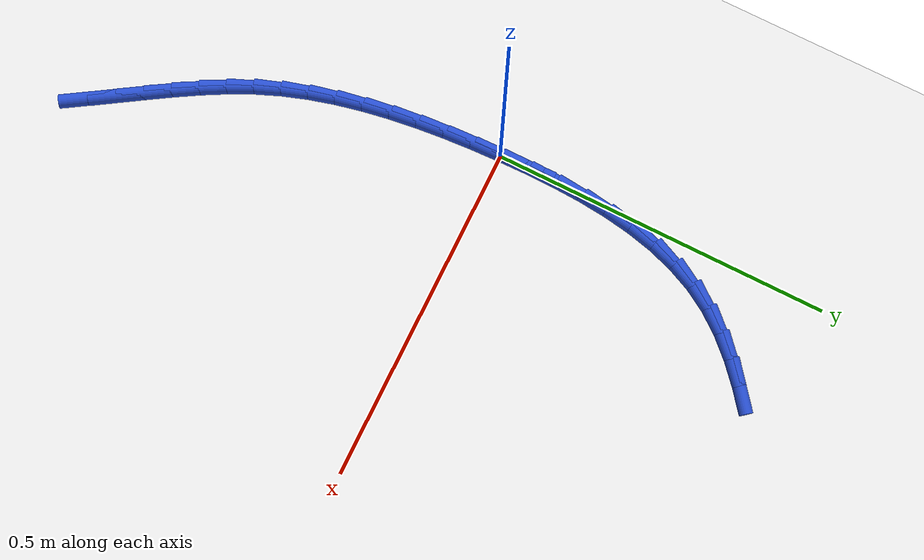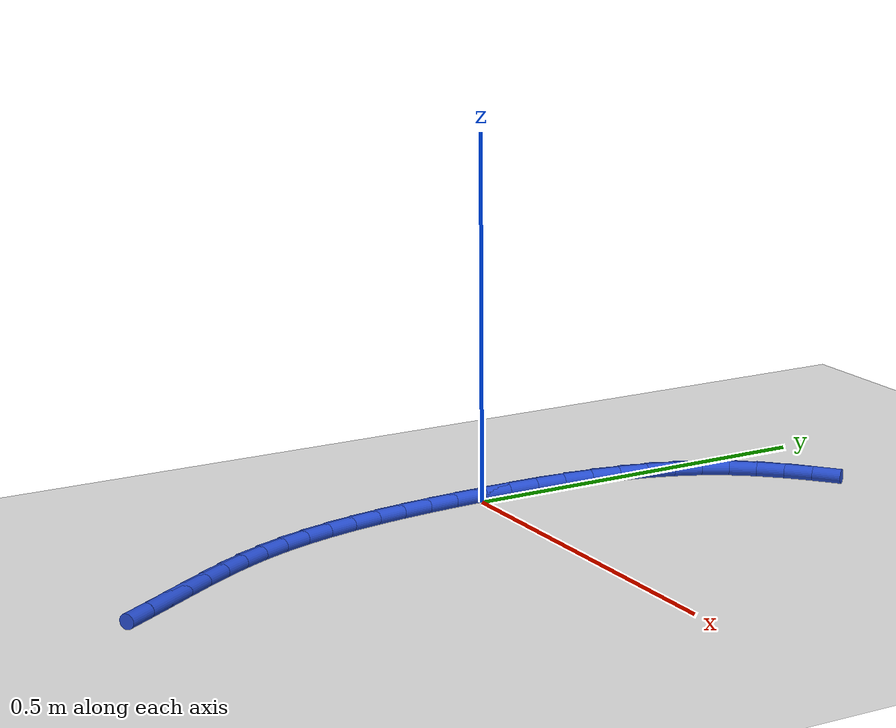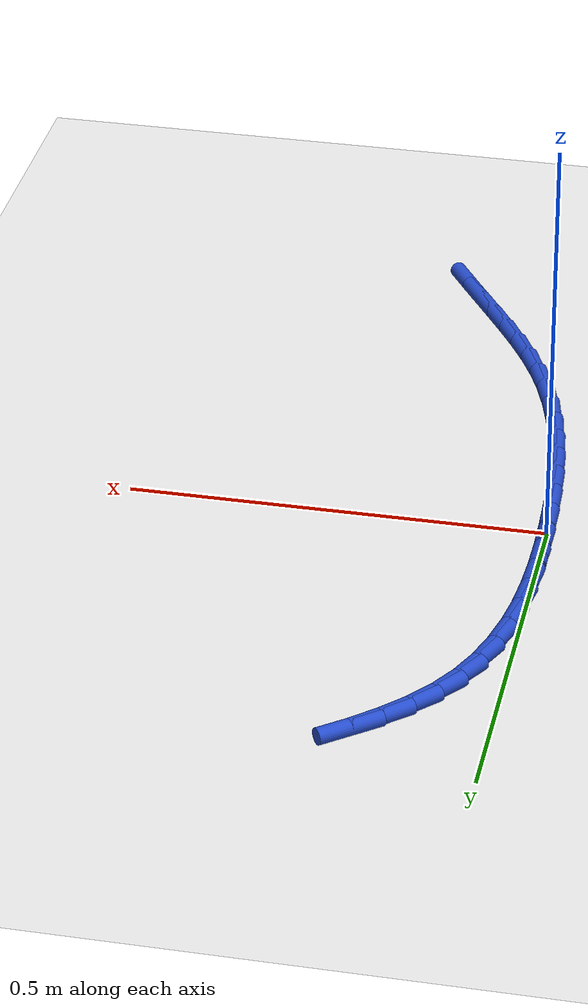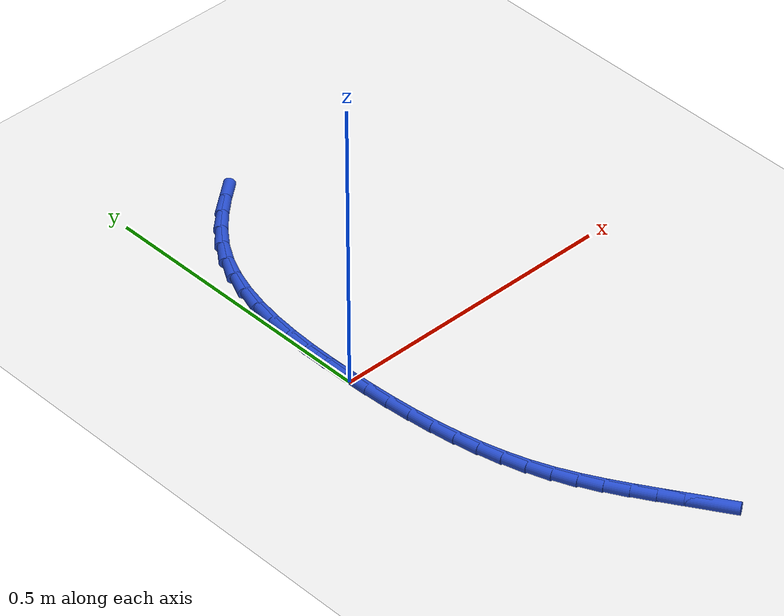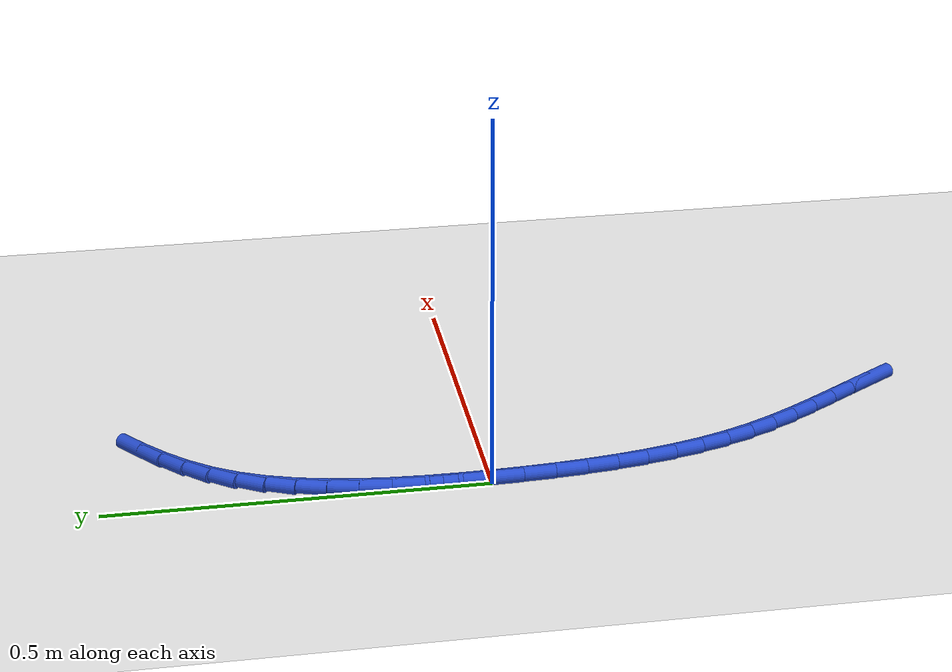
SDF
<sdf version="1.6">
 <world name="default">
  <model name="ground_plane">
   <static>1</static>
   <link name="link">
    <collision name="collision">
     <geometry><plane><normal>0 0 1</normal><size>100 100</size></plane></geometry>
     <surface><friction><ode><mu>100</mu><mu2>50</mu2></ode></friction></surface>
    </collision>
    <visual name="visual">
     <cast_shadows>0</cast_shadows>
     <geometry><plane><normal>0 0 1</normal><size>100 100</size></plane></geometry>
     <material>
      <script><uri>file://media/materials/scripts/gazebo.material</uri><name>Gazebo/WhiteGlow</name></script>
     </material>
    </visual>
   </link>
  </model>
  <model name="line">
   <link name="link_0">
    <pose>-2.927345865710862e-17 6.938893903907228e-17 0.01 0 1.57 -1.5520164576611406</pose>
    <collision name="collision">
     <geometry><cylinder><radius>0.01</radius><length>0.08</length></cylinder></geometry>
    </collision>
    <visual name="visual">
     <material>
      <script><name>Gazebo/Blue</name><uri>file://media/materials/scripts/gazebo.material</uri></script>
     </material>
     <geometry><cylinder><radius>0.01</radius><length>0.08</length></cylinder></geometry>
    </visual>
   </link>
   <link name="link_1">
    <pose>-0.0008034517280669319 0.04277757557338744 0.01 0 1.57 1.5610438188161635</pose>
    <collision name="collision">
     <geometry><cylinder><radius>0.01</radius><length>0.08</length></cylinder></geometry>
    </collision>
    <visual name="visual">
     <material>
      <script><name>Gazebo/Blue</name><uri>file://media/materials/scripts/gazebo.material</uri></script>
     </material>
     <geometry><cylinder><radius>0.01</radius><length>0.08</length></cylinder></geometry>
    </visual>
   </link>
   <link name="link_2">
    <pose>-0.00038623956465291224 0.08555620616023513 0.01 0 1.57 1.5232267184303045</pose>
    <collision name="collision">
     <geometry><cylinder><radius>0.01</radius><length>0.08</length></cylinder></geometry>
    </collision>
    <visual name="visual">
     <material>
      <script><name>Gazebo/Blue</name><uri>file://media/materials/scripts/gazebo.material</uri></script>
     </material>
     <geometry><cylinder><radius>0.01</radius><length>0.08</length></cylinder></geometry>
    </visual>
   </link>
   <link name="link_3">
    <pose>0.001633280579723301 0.12797817854219984 0.01 0 1.57 1.475100487232595</pose>
    <collision name="collision">
     <geometry><cylinder><radius>0.01</radius><length>0.08</length></cylinder></geometry>
    </collision>
    <visual name="visual">
     <material>
      <script><name>Gazebo/Blue</name><uri>file://media/materials/scripts/gazebo.material</uri></script>
     </material>
     <geometry><cylinder><radius>0.01</radius><length>0.08</length></cylinder></geometry>
    </visual>
   </link>
   <link name="link_4">
    <pose>0.005636752794542992 0.1696857795009383 0.01 0 1.57 1.415324720007898</pose>
    <collision name="collision">
     <geometry><cylinder><radius>0.01</radius><length>0.08</length></cylinder></geometry>
    </collision>
    <visual name="visual">
     <material>
      <script><name>Gazebo/Blue</name><uri>file://media/materials/scripts/gazebo.material</uri></script>
     </material>
     <geometry><cylinder><radius>0.01</radius><length>0.08</length></cylinder></geometry>
    </visual>
   </link>
   <link name="link_5">
    <pose>0.012005821169287424 0.21032129581810716 0.01 0 1.57 1.3423311525854869</pose>
    <collision name="collision">
     <geometry><cylinder><radius>0.01</radius><length>0.08</length></cylinder></geometry>
    </collision>
    <visual name="visual">
     <material>
      <script><name>Gazebo/Blue</name><uri>file://media/materials/scripts/gazebo.material</uri></script>
     </material>
     <geometry><cylinder><radius>0.01</radius><length>0.08</length></cylinder></geometry>
    </visual>
   </link>
   <link name="link_6">
    <pose>0.02112212979343788 0.2495270142753631 0.01 0 1.57 1.2545286853556408</pose>
    <collision name="collision">
     <geometry><cylinder><radius>0.01</radius><length>0.08</length></cylinder></geometry>
    </collision>
    <visual name="visual">
     <material>
      <script><name>Gazebo/Blue</name><uri>file://media/materials/scripts/gazebo.material</uri></script>
     </material>
     <geometry><cylinder><radius>0.01</radius><length>0.08</length></cylinder></geometry>
    </visual>
   </link>
   <link name="link_7">
    <pose>0.03336732275647563 0.2869452216543629 0.01 0 1.57 1.1507070900777767</pose>
    <collision name="collision">
     <geometry><cylinder><radius>0.01</radius><length>0.08</length></cylinder></geometry>
    </collision>
    <visual name="visual">
     <material>
      <script><name>Gazebo/Blue</name><uri>file://media/materials/scripts/gazebo.material</uri></script>
     </material>
     <geometry><cylinder><radius>0.01</radius><length>0.08</length></cylinder></geometry>
    </visual>
   </link>
   <link name="link_8">
    <pose>0.049123044147881975 0.32221820473676327 0.01 0 1.57 1.0310508846193094</pose>
    <collision name="collision">
     <geometry><cylinder><radius>0.01</radius><length>0.08</length></cylinder></geometry>
    </collision>
    <visual name="visual">
     <material>
      <script><name>Gazebo/Blue</name><uri>file://media/materials/scripts/gazebo.material</uri></script>
     </material>
     <geometry><cylinder><radius>0.01</radius><length>0.08</length></cylinder></geometry>
    </visual>
   </link>
   <link name="link_9">
    <pose>0.06876020352531617 0.3549968648282729 0.01 0 1.57 0.9107668565266105</pose>
    <collision name="collision">
     <geometry><cylinder><radius>0.01</radius><length>0.08</length></cylinder></geometry>
    </collision>
    <visual name="visual">
     <material>
      <script><name>Gazebo/Blue</name><uri>file://media/materials/scripts/gazebo.material</uri></script>
     </material>
     <geometry><cylinder><radius>0.01</radius><length>0.08</length></cylinder></geometry>
    </visual>
   </link>
   <link name="link_10">
    <pose>0.0922459756503917 0.385256102750268 0.01 0 1.57 0.809878685396757</pose>
    <collision name="collision">
     <geometry><cylinder><radius>0.01</radius><length>0.08</length></cylinder></geometry>
    </collision>
    <visual name="visual">
     <material>
      <script><name>Gazebo/Blue</name><uri>file://media/materials/scripts/gazebo.material</uri></script>
     </material>
     <geometry><cylinder><radius>0.01</radius><length>0.08</length></cylinder></geometry>
    </visual>
   </link>
   <link name="link_11">
    <pose>0.11903078771923899 0.41338551224278886 0.01 0 1.57 0.7302964157931717</pose>
    <collision name="collision">
     <geometry><cylinder><radius>0.01</radius><length>0.08</length></cylinder></geometry>
    </collision>
    <visual name="visual">
     <material>
      <script><name>Gazebo/Blue</name><uri>file://media/materials/scripts/gazebo.material</uri></script>
     </material>
     <geometry><cylinder><radius>0.01</radius><length>0.08</length></cylinder></geometry>
    </visual>
   </link>
   <link name="link_12">
    <pose>0.14853129740500753 0.43980178728394675 0.01 0 1.57 0.6711364347135063</pose>
    <collision name="collision">
     <geometry><cylinder><radius>0.01</radius><length>0.08</length></cylinder></geometry>
    </collision>
    <visual name="visual">
     <material>
      <script><name>Gazebo/Blue</name><uri>file://media/materials/scripts/gazebo.material</uri></script>
     </material>
     <geometry><cylinder><radius>0.01</radius><length>0.08</length></cylinder></geometry>
    </visual>
   </link>
   <link name="link_165">
    <pose>0.18668606684531697 -0.5612598520651431 0.01 0 1.57 -1.0097028255412965</pose>
    <collision name="collision">
     <geometry><cylinder><radius>0.01</radius><length>0.08</length></cylinder></geometry>
    </collision>
    <visual name="visual">
     <material>
      <script><name>Gazebo/Blue</name><uri>file://media/materials/scripts/gazebo.material</uri></script>
     </material>
     <geometry><cylinder><radius>0.01</radius><length>0.08</length></cylinder></geometry>
    </visual>
   </link>
   <link name="link_166">
    <pose>0.1646973509317662 -0.5262723753863107 0.01 0 1.57 -1.004221080705151</pose>
    <collision name="collision">
     <geometry><cylinder><radius>0.01</radius><length>0.08</length></cylinder></geometry>
    </collision>
    <visual name="visual">
     <material>
      <script><name>Gazebo/Blue</name><uri>file://media/materials/scripts/gazebo.material</uri></script>
     </material>
     <geometry><cylinder><radius>0.01</radius><length>0.08</length></cylinder></geometry>
    </visual>
   </link>
   <link name="link_167">
    <pose>0.14299005524495464 -0.4921493121825575 0.01 0 1.57 -1.01190601236502</pose>
    <collision name="collision">
     <geometry><cylinder><radius>0.01</radius><length>0.08</length></cylinder></geometry>
    </collision>
    <visual name="visual">
     <material>
      <script><name>Gazebo/Blue</name><uri>file://media/materials/scripts/gazebo.material</uri></script>
     </material>
     <geometry><cylinder><radius>0.01</radius><length>0.08</length></cylinder></geometry>
    </visual>
   </link>
   <link name="link_168">
    <pose>0.12194178510269663 -0.4584938749053352 0.01 0 1.57 -1.0334282588355437</pose>
    <collision name="collision">
     <geometry><cylinder><radius>0.01</radius><length>0.08</length></cylinder></geometry>
    </collision>
    <visual name="visual">
     <material>
      <script><name>Gazebo/Blue</name><uri>file://media/materials/scripts/gazebo.material</uri></script>
     </material>
     <geometry><cylinder><radius>0.01</radius><length>0.08</length></cylinder></geometry>
    </visual>
   </link>
   <link name="link_169">
    <pose>0.10193014582280685 -0.42490927600609535 0.01 0 1.57 -1.0691628888056066</pose>
    <collision name="collision">
     <geometry><cylinder><radius>0.01</radius><length>0.08</length></cylinder></geometry>
    </collision>
    <visual name="visual">
     <material>
      <script><name>Gazebo/Blue</name><uri>file://media/materials/scripts/gazebo.material</uri></script>
     </material>
     <geometry><cylinder><radius>0.01</radius><length>0.08</length></cylinder></geometry>
    </visual>
   </link>
   <link name="link_170">
    <pose>0.08333274272309944 -0.390998727936289 0.01 0 1.57 -1.1190237988855816</pose>
    <collision name="collision">
     <geometry><cylinder><radius>0.01</radius><length>0.08</length></cylinder></geometry>
    </collision>
    <visual name="visual">
     <material>
      <script><name>Gazebo/Blue</name><uri>file://media/materials/scripts/gazebo.material</uri></script>
     </material>
     <geometry><cylinder><radius>0.01</radius><length>0.08</length></cylinder></geometry>
    </visual>
   </link>
   <link name="link_171">
    <pose>0.06652718112138964 -0.35636544314736857 0.01 0 1.57 -1.1816044693950196</pose>
    <collision name="collision">
     <geometry><cylinder><radius>0.01</radius><length>0.08</length></cylinder></geometry>
    </collision>
    <visual name="visual">
     <material>
      <script><name>Gazebo/Blue</name><uri>file://media/materials/scripts/gazebo.material</uri></script>
     </material>
     <geometry><cylinder><radius>0.01</radius><length>0.08</length></cylinder></geometry>
    </visual>
   </link>
   <link name="link_172">
    <pose>0.05187181114306596 -0.3206302726393776 0.01 0 1.57 -1.2459785659410767</pose>
    <collision name="collision">
     <geometry><cylinder><radius>0.01</radius><length>0.08</length></cylinder></geometry>
    </collision>
    <visual name="visual">
     <material>
      <script><name>Gazebo/Blue</name><uri>file://media/materials/scripts/gazebo.material</uri></script>
     </material>
     <geometry><cylinder><radius>0.01</radius><length>0.08</length></cylinder></geometry>
    </visual>
   </link>
   <link name="link_173">
    <pose>0.03943033635263769 -0.2836839757865124 0.01 0 1.57 -1.3041717452987966</pose>
    <collision name="collision">
     <geometry><cylinder><radius>0.01</radius><length>0.08</length></cylinder></geometry>
    </collision>
    <visual name="visual">
     <material>
      <script><name>Gazebo/Blue</name><uri>file://media/materials/scripts/gazebo.material</uri></script>
     </material>
     <geometry><cylinder><radius>0.01</radius><length>0.08</length></cylinder></geometry>
    </visual>
   </link>
   <link name="link_174">
    <pose>0.02903625300042758 -0.24562819133554586 0.01 0 1.57 -1.3560404322056192</pose>
    <collision name="collision">
     <geometry><cylinder><radius>0.01</radius><length>0.08</length></cylinder></geometry>
    </collision>
    <visual name="visual">
     <material>
      <script><name>Gazebo/Blue</name><uri>file://media/materials/scripts/gazebo.material</uri></script>
     </material>
     <geometry><cylinder><radius>0.01</radius><length>0.08</length></cylinder></geometry>
    </visual>
   </link>
   <link name="link_175">
    <pose>0.02051693656697583 -0.20657016491023483 0.01 0 1.57 -1.40179417815137</pose>
    <collision name="collision">
     <geometry><cylinder><radius>0.01</radius><length>0.08</length></cylinder></geometry>
    </collision>
    <visual name="visual">
     <material>
      <script><name>Gazebo/Blue</name><uri>file://media/materials/scripts/gazebo.material</uri></script>
     </material>
     <geometry><cylinder><radius>0.01</radius><length>0.08</length></cylinder></geometry>
    </visual>
   </link>
   <link name="link_176">
    <pose>0.01369976253282253 -0.1666171421343353 0.01 0 1.57 -1.4417299827277483</pose>
    <collision name="collision">
     <geometry><cylinder><radius>0.01</radius><length>0.08</length></cylinder></geometry>
    </collision>
    <visual name="visual">
     <material>
      <script><name>Gazebo/Blue</name><uri>file://media/materials/scripts/gazebo.material</uri></script>
     </material>
     <geometry><cylinder><radius>0.01</radius><length>0.08</length></cylinder></geometry>
    </visual>
   </link>
   <link name="link_177">
    <pose>0.00841210637850817 -0.12587636863160567 0.01 0 1.57 -1.476182475867089</pose>
    <collision name="collision">
     <geometry><cylinder><radius>0.01</radius><length>0.08</length></cylinder></geometry>
    </collision>
    <visual name="visual">
     <material>
      <script><name>Gazebo/Blue</name><uri>file://media/materials/scripts/gazebo.material</uri></script>
     </material>
     <geometry><cylinder><radius>0.01</radius><length>0.08</length></cylinder></geometry>
    </visual>
   </link>
   <link name="link_178">
    <pose>0.004481343584572816 -0.084455090025802 0.01 0 1.57 -1.5054881172062957</pose>
    <collision name="collision">
     <geometry><cylinder><radius>0.01</radius><length>0.08</length></cylinder></geometry>
    </collision>
    <visual name="visual">
     <material>
      <script><name>Gazebo/Blue</name><uri>file://media/materials/scripts/gazebo.material</uri></script>
     </material>
     <geometry><cylinder><radius>0.01</radius><length>0.08</length></cylinder></geometry>
    </visual>
   </link>
   <link name="link_179">
    <pose>0.0017348496315566723 -0.042460551940681046 0.01 0 1.57 -1.5299611244744107</pose>
    <collision name="collision">
     <geometry><cylinder><radius>0.01</radius><length>0.08</length></cylinder></geometry>
    </collision>
    <visual name="visual">
     <material>
      <script><name>Gazebo/Blue</name><uri>file://media/materials/scripts/gazebo.material</uri></script>
     </material>
     <geometry><cylinder><radius>0.01</radius><length>0.08</length></cylinder></geometry>
    </visual>
   </link>
   <link name="link_180">
    <pose>-4.185020385794047e-17 2.636779683484747e-16 0.01 0 1.57 -1.5498782187957985</pose>
    <collision name="collision">
     <geometry><cylinder><radius>0.01</radius><length>0.08</length></cylinder></geometry>
    </collision>
    <visual name="visual">
     <material>
      <script><name>Gazebo/Blue</name><uri>file://media/materials/scripts/gazebo.material</uri></script>
     </material>
     <geometry><cylinder><radius>0.01</radius><length>0.08</length></cylinder></geometry>
    </visual>
   </link>
   <link name="link_181">
    <pose>-0.0008958298295571165 0.042819320172485284 0.01 0 1.57 -1.5498782187957982</pose>
    <collision name="collision">
     <geometry><cylinder><radius>0.01</radius><length>0.08</length></cylinder></geometry>
    </collision>
    <visual name="visual">
     <material>
      <script><name>Gazebo/Blue</name><uri>file://media/materials/scripts/gazebo.material</uri></script>
     </material>
     <geometry><cylinder><radius>0.01</radius><length>0.08</length></cylinder></geometry>
    </visual>
   </link>
  </model>
 </world>
</sdf>
